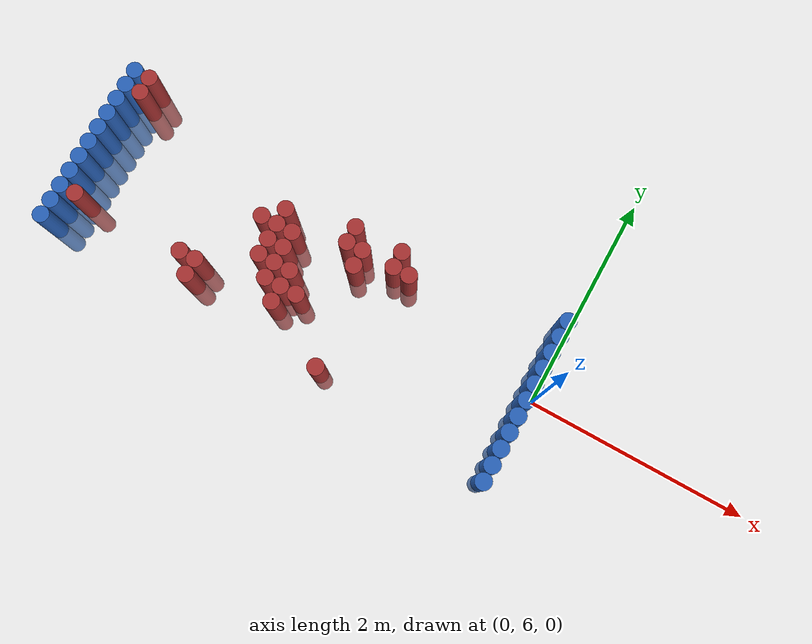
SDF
<sdf version="1.6">
 <world name="default">
  <model name="ground_plane">
   <static>1</static>
   <link name="link">
    <collision name="collision">
     <geometry><plane><normal>0 0 1</normal><size>100 100</size></plane></geometry>
     <surface><friction><ode><mu>100</mu><mu2>50</mu2></ode></friction></surface>
    </collision>
    <visual name="visual">
     <cast_shadows>0</cast_shadows>
     <geometry><plane><normal>0 0 1</normal><size>100 100</size></plane></geometry>
     <material>
      <script><uri>file://media/materials/scripts/gazebo.material</uri><name>Gazebo/Grey</name></script>
     </material>
    </visual>
   </link>
  </model>
  <model name="unit_cylinder_97">
   <static>1</static>
   <pose>-4.425000 5.325000 0.000000 0.000000 0.000000 0.000000</pose>
   <link name="link">
    <inertial>
     <mass>1</mass>
     <inertia><ixx>0.145833</ixx><ixy>0</ixy><ixz>0</ixz><iyy>0.145833</iyy><iyz>0</iyz><izz>0.125</izz></inertia>
    </inertial>
    <collision name="collision">
     <geometry><cylinder><radius>0.075000</radius><length>1</length></cylinder></geometry>
    </collision>
    <visual name="visual">
     <geometry><cylinder><radius>0.075000</radius><length>1</length></cylinder></geometry>
     <material>
      <ambient>0.152000 0.379000 0.720000 1</ambient>
      <diffuse>0.152000 0.379000 0.720000 1</diffuse>
     </material>
     <material>
      <script><name>Gazebo/Grey</name><uri>file://media/materials/scripts/gazebo.material</uri></script>
     </material>
    </visual>
   </link>
  </model>
  <model name="unit_cylinder_98">
   <static>1</static>
   <pose>-4.425000 5.475000 0.000000 0.000000 0.000000 0.000000</pose>
   <link name="link">
    <inertial>
     <mass>1</mass>
     <inertia><ixx>0.145833</ixx><ixy>0</ixy><ixz>0</ixz><iyy>0.145833</iyy><iyz>0</iyz><izz>0.125</izz></inertia>
    </inertial>
    <collision name="collision">
     <geometry><cylinder><radius>0.075000</radius><length>1</length></cylinder></geometry>
    </collision>
    <visual name="visual">
     <geometry><cylinder><radius>0.075000</radius><length>1</length></cylinder></geometry>
     <material>
      <ambient>0.152000 0.379000 0.720000 1</ambient>
      <diffuse>0.152000 0.379000 0.720000 1</diffuse>
     </material>
     <material>
      <script><name>Gazebo/Grey</name><uri>file://media/materials/scripts/gazebo.material</uri></script>
     </material>
    </visual>
   </link>
  </model>
  <model name="unit_cylinder_99">
   <static>1</static>
   <pose>-4.425000 5.625000 0.000000 0.000000 0.000000 0.000000</pose>
   <link name="link">
    <inertial>
     <mass>1</mass>
     <inertia><ixx>0.145833</ixx><ixy>0</ixy><ixz>0</ixz><iyy>0.145833</iyy><iyz>0</iyz><izz>0.125</izz></inertia>
    </inertial>
    <collision name="collision">
     <geometry><cylinder><radius>0.075000</radius><length>1</length></cylinder></geometry>
    </collision>
    <visual name="visual">
     <geometry><cylinder><radius>0.075000</radius><length>1</length></cylinder></geometry>
     <material>
      <ambient>0.152000 0.379000 0.720000 1</ambient>
      <diffuse>0.152000 0.379000 0.720000 1</diffuse>
     </material>
     <material>
      <script><name>Gazebo/Grey</name><uri>file://media/materials/scripts/gazebo.material</uri></script>
     </material>
    </visual>
   </link>
  </model>
  <model name="unit_cylinder_100">
   <static>1</static>
   <pose>-4.425000 5.775000 0.000000 0.000000 0.000000 0.000000</pose>
   <link name="link">
    <inertial>
     <mass>1</mass>
     <inertia><ixx>0.145833</ixx><ixy>0</ixy><ixz>0</ixz><iyy>0.145833</iyy><iyz>0</iyz><izz>0.125</izz></inertia>
    </inertial>
    <collision name="collision">
     <geometry><cylinder><radius>0.075000</radius><length>1</length></cylinder></geometry>
    </collision>
    <visual name="visual">
     <geometry><cylinder><radius>0.075000</radius><length>1</length></cylinder></geometry>
     <material>
      <ambient>0.152000 0.379000 0.720000 1</ambient>
      <diffuse>0.152000 0.379000 0.720000 1</diffuse>
     </material>
     <material>
      <script><name>Gazebo/Grey</name><uri>file://media/materials/scripts/gazebo.material</uri></script>
     </material>
    </visual>
   </link>
  </model>
  <model name="unit_cylinder_101">
   <static>1</static>
   <pose>-4.425000 5.925000 0.000000 0.000000 0.000000 0.000000</pose>
   <link name="link">
    <inertial>
     <mass>1</mass>
     <inertia><ixx>0.145833</ixx><ixy>0</ixy><ixz>0</ixz><iyy>0.145833</iyy><iyz>0</iyz><izz>0.125</izz></inertia>
    </inertial>
    <collision name="collision">
     <geometry><cylinder><radius>0.075000</radius><length>1</length></cylinder></geometry>
    </collision>
    <visual name="visual">
     <geometry><cylinder><radius>0.075000</radius><length>1</length></cylinder></geometry>
     <material>
      <ambient>0.152000 0.379000 0.720000 1</ambient>
      <diffuse>0.152000 0.379000 0.720000 1</diffuse>
     </material>
     <material>
      <script><name>Gazebo/Grey</name><uri>file://media/materials/scripts/gazebo.material</uri></script>
     </material>
    </visual>
   </link>
  </model>
  <model name="unit_cylinder_102">
   <static>1</static>
   <pose>-4.425000 6.075000 0.000000 0.000000 0.000000 0.000000</pose>
   <link name="link">
    <inertial>
     <mass>1</mass>
     <inertia><ixx>0.145833</ixx><ixy>0</ixy><ixz>0</ixz><iyy>0.145833</iyy><iyz>0</iyz><izz>0.125</izz></inertia>
    </inertial>
    <collision name="collision">
     <geometry><cylinder><radius>0.075000</radius><length>1</length></cylinder></geometry>
    </collision>
    <visual name="visual">
     <geometry><cylinder><radius>0.075000</radius><length>1</length></cylinder></geometry>
     <material>
      <ambient>0.152000 0.379000 0.720000 1</ambient>
      <diffuse>0.152000 0.379000 0.720000 1</diffuse>
     </material>
     <material>
      <script><name>Gazebo/Grey</name><uri>file://media/materials/scripts/gazebo.material</uri></script>
     </material>
    </visual>
   </link>
  </model>
  <model name="unit_cylinder_103">
   <static>1</static>
   <pose>-4.425000 6.225000 0.000000 0.000000 0.000000 0.000000</pose>
   <link name="link">
    <inertial>
     <mass>1</mass>
     <inertia><ixx>0.145833</ixx><ixy>0</ixy><ixz>0</ixz><iyy>0.145833</iyy><iyz>0</iyz><izz>0.125</izz></inertia>
    </inertial>
    <collision name="collision">
     <geometry><cylinder><radius>0.075000</radius><length>1</length></cylinder></geometry>
    </collision>
    <visual name="visual">
     <geometry><cylinder><radius>0.075000</radius><length>1</length></cylinder></geometry>
     <material>
      <ambient>0.152000 0.379000 0.720000 1</ambient>
      <diffuse>0.152000 0.379000 0.720000 1</diffuse>
     </material>
     <material>
      <script><name>Gazebo/Grey</name><uri>file://media/materials/scripts/gazebo.material</uri></script>
     </material>
    </visual>
   </link>
  </model>
  <model name="unit_cylinder_104">
   <static>1</static>
   <pose>-4.425000 6.375000 0.000000 0.000000 0.000000 0.000000</pose>
   <link name="link">
    <inertial>
     <mass>1</mass>
     <inertia><ixx>0.145833</ixx><ixy>0</ixy><ixz>0</ixz><iyy>0.145833</iyy><iyz>0</iyz><izz>0.125</izz></inertia>
    </inertial>
    <collision name="collision">
     <geometry><cylinder><radius>0.075000</radius><length>1</length></cylinder></geometry>
    </collision>
    <visual name="visual">
     <geometry><cylinder><radius>0.075000</radius><length>1</length></cylinder></geometry>
     <material>
      <ambient>0.152000 0.379000 0.720000 1</ambient>
      <diffuse>0.152000 0.379000 0.720000 1</diffuse>
     </material>
     <material>
      <script><name>Gazebo/Grey</name><uri>file://media/materials/scripts/gazebo.material</uri></script>
     </material>
    </visual>
   </link>
  </model>
  <model name="unit_cylinder_105">
   <static>1</static>
   <pose>-4.425000 6.525000 0.000000 0.000000 0.000000 0.000000</pose>
   <link name="link">
    <inertial>
     <mass>1</mass>
     <inertia><ixx>0.145833</ixx><ixy>0</ixy><ixz>0</ixz><iyy>0.145833</iyy><iyz>0</iyz><izz>0.125</izz></inertia>
    </inertial>
    <collision name="collision">
     <geometry><cylinder><radius>0.075000</radius><length>1</length></cylinder></geometry>
    </collision>
    <visual name="visual">
     <geometry><cylinder><radius>0.075000</radius><length>1</length></cylinder></geometry>
     <material>
      <ambient>0.152000 0.379000 0.720000 1</ambient>
      <diffuse>0.152000 0.379000 0.720000 1</diffuse>
     </material>
     <material>
      <script><name>Gazebo/Grey</name><uri>file://media/materials/scripts/gazebo.material</uri></script>
     </material>
    </visual>
   </link>
  </model>
  <model name="unit_cylinder_106">
   <static>1</static>
   <pose>-4.425000 6.675000 0.000000 0.000000 0.000000 0.000000</pose>
   <link name="link">
    <inertial>
     <mass>1</mass>
     <inertia><ixx>0.145833</ixx><ixy>0</ixy><ixz>0</ixz><iyy>0.145833</iyy><iyz>0</iyz><izz>0.125</izz></inertia>
    </inertial>
    <collision name="collision">
     <geometry><cylinder><radius>0.075000</radius><length>1</length></cylinder></geometry>
    </collision>
    <visual name="visual">
     <geometry><cylinder><radius>0.075000</radius><length>1</length></cylinder></geometry>
     <material>
      <ambient>0.152000 0.379000 0.720000 1</ambient>
      <diffuse>0.152000 0.379000 0.720000 1</diffuse>
     </material>
     <material>
      <script><name>Gazebo/Grey</name><uri>file://media/materials/scripts/gazebo.material</uri></script>
     </material>
    </visual>
   </link>
  </model>
  <model name="unit_cylinder_107">
   <static>1</static>
   <pose>-4.425000 6.825000 0.000000 0.000000 0.000000 0.000000</pose>
   <link name="link">
    <inertial>
     <mass>1</mass>
     <inertia><ixx>0.145833</ixx><ixy>0</ixy><ixz>0</ixz><iyy>0.145833</iyy><iyz>0</iyz><izz>0.125</izz></inertia>
    </inertial>
    <collision name="collision">
     <geometry><cylinder><radius>0.075000</radius><length>1</length></cylinder></geometry>
    </collision>
    <visual name="visual">
     <geometry><cylinder><radius>0.075000</radius><length>1</length></cylinder></geometry>
     <material>
      <ambient>0.152000 0.379000 0.720000 1</ambient>
      <diffuse>0.152000 0.379000 0.720000 1</diffuse>
     </material>
     <material>
      <script><name>Gazebo/Grey</name><uri>file://media/materials/scripts/gazebo.material</uri></script>
     </material>
    </visual>
   </link>
  </model>
  <model name="unit_cylinder_126">
   <static>1</static>
   <pose>-4.275000 5.625000 0.000000 0.000000 0.000000 0.000000</pose>
   <link name="link">
    <inertial>
     <mass>1</mass>
     <inertia><ixx>0.145833</ixx><ixy>0</ixy><ixz>0</ixz><iyy>0.145833</iyy><iyz>0</iyz><izz>0.125</izz></inertia>
    </inertial>
    <collision name="collision">
     <geometry><cylinder><radius>0.075000</radius><length>1</length></cylinder></geometry>
    </collision>
    <visual name="visual">
     <geometry><cylinder><radius>0.075000</radius><length>1</length></cylinder></geometry>
     <material>
      <ambient>0.648000 0.192000 0.192000 1</ambient>
      <diffuse>0.648000 0.192000 0.192000 1</diffuse>
     </material>
     <material>
      <script><name>Gazebo/Grey</name><uri>file://media/materials/scripts/gazebo.material</uri></script>
     </material>
    </visual>
   </link>
  </model>
  <model name="unit_cylinder_127">
   <static>1</static>
   <pose>-4.275000 6.675000 0.000000 0.000000 0.000000 0.000000</pose>
   <link name="link">
    <inertial>
     <mass>1</mass>
     <inertia><ixx>0.145833</ixx><ixy>0</ixy><ixz>0</ixz><iyy>0.145833</iyy><iyz>0</iyz><izz>0.125</izz></inertia>
    </inertial>
    <collision name="collision">
     <geometry><cylinder><radius>0.075000</radius><length>1</length></cylinder></geometry>
    </collision>
    <visual name="visual">
     <geometry><cylinder><radius>0.075000</radius><length>1</length></cylinder></geometry>
     <material>
      <ambient>0.648000 0.192000 0.192000 1</ambient>
      <diffuse>0.648000 0.192000 0.192000 1</diffuse>
     </material>
     <material>
      <script><name>Gazebo/Grey</name><uri>file://media/materials/scripts/gazebo.material</uri></script>
     </material>
    </visual>
   </link>
  </model>
  <model name="unit_cylinder_128">
   <static>1</static>
   <pose>-4.275000 6.825000 0.000000 0.000000 0.000000 0.000000</pose>
   <link name="link">
    <inertial>
     <mass>1</mass>
     <inertia><ixx>0.145833</ixx><ixy>0</ixy><ixz>0</ixz><iyy>0.145833</iyy><iyz>0</iyz><izz>0.125</izz></inertia>
    </inertial>
    <collision name="collision">
     <geometry><cylinder><radius>0.075000</radius><length>1</length></cylinder></geometry>
    </collision>
    <visual name="visual">
     <geometry><cylinder><radius>0.075000</radius><length>1</length></cylinder></geometry>
     <material>
      <ambient>0.648000 0.192000 0.192000 1</ambient>
      <diffuse>0.648000 0.192000 0.192000 1</diffuse>
     </material>
     <material>
      <script><name>Gazebo/Grey</name><uri>file://media/materials/scripts/gazebo.material</uri></script>
     </material>
    </visual>
   </link>
  </model>
  <model name="unit_cylinder_167">
   <static>1</static>
   <pose>-3.225000 5.625000 0.000000 0.000000 0.000000 0.000000</pose>
   <link name="link">
    <inertial>
     <mass>1</mass>
     <inertia><ixx>0.145833</ixx><ixy>0</ixy><ixz>0</ixz><iyy>0.145833</iyy><iyz>0</iyz><izz>0.125</izz></inertia>
    </inertial>
    <collision name="collision">
     <geometry><cylinder><radius>0.075000</radius><length>1</length></cylinder></geometry>
    </collision>
    <visual name="visual">
     <geometry><cylinder><radius>0.075000</radius><length>1</length></cylinder></geometry>
     <material>
      <ambient>0.648000 0.192000 0.192000 1</ambient>
      <diffuse>0.648000 0.192000 0.192000 1</diffuse>
     </material>
     <material>
      <script><name>Gazebo/Grey</name><uri>file://media/materials/scripts/gazebo.material</uri></script>
     </material>
    </visual>
   </link>
  </model>
  <model name="unit_cylinder_168">
   <static>1</static>
   <pose>-3.075000 5.475000 0.000000 0.000000 0.000000 0.000000</pose>
   <link name="link">
    <inertial>
     <mass>1</mass>
     <inertia><ixx>0.145833</ixx><ixy>0</ixy><ixz>0</ixz><iyy>0.145833</iyy><iyz>0</iyz><izz>0.125</izz></inertia>
    </inertial>
    <collision name="collision">
     <geometry><cylinder><radius>0.075000</radius><length>1</length></cylinder></geometry>
    </collision>
    <visual name="visual">
     <geometry><cylinder><radius>0.075000</radius><length>1</length></cylinder></geometry>
     <material>
      <ambient>0.648000 0.192000 0.192000 1</ambient>
      <diffuse>0.648000 0.192000 0.192000 1</diffuse>
     </material>
     <material>
      <script><name>Gazebo/Grey</name><uri>file://media/materials/scripts/gazebo.material</uri></script>
     </material>
    </visual>
   </link>
  </model>
  <model name="unit_cylinder_169">
   <static>1</static>
   <pose>-3.075000 5.625000 0.000000 0.000000 0.000000 0.000000</pose>
   <link name="link">
    <inertial>
     <mass>1</mass>
     <inertia><ixx>0.145833</ixx><ixy>0</ixy><ixz>0</ixz><iyy>0.145833</iyy><iyz>0</iyz><izz>0.125</izz></inertia>
    </inertial>
    <collision name="collision">
     <geometry><cylinder><radius>0.075000</radius><length>1</length></cylinder></geometry>
    </collision>
    <visual name="visual">
     <geometry><cylinder><radius>0.075000</radius><length>1</length></cylinder></geometry>
     <material>
      <ambient>0.648000 0.192000 0.192000 1</ambient>
      <diffuse>0.648000 0.192000 0.192000 1</diffuse>
     </material>
     <material>
      <script><name>Gazebo/Grey</name><uri>file://media/materials/scripts/gazebo.material</uri></script>
     </material>
    </visual>
   </link>
  </model>
  <model name="unit_cylinder_171">
   <static>1</static>
   <pose>-2.775000 6.225000 0.000000 0.000000 0.000000 0.000000</pose>
   <link name="link">
    <inertial>
     <mass>1</mass>
     <inertia><ixx>0.145833</ixx><ixy>0</ixy><ixz>0</ixz><iyy>0.145833</iyy><iyz>0</iyz><izz>0.125</izz></inertia>
    </inertial>
    <collision name="collision">
     <geometry><cylinder><radius>0.075000</radius><length>1</length></cylinder></geometry>
    </collision>
    <visual name="visual">
     <geometry><cylinder><radius>0.075000</radius><length>1</length></cylinder></geometry>
     <material>
      <ambient>0.648000 0.192000 0.192000 1</ambient>
      <diffuse>0.648000 0.192000 0.192000 1</diffuse>
     </material>
     <material>
      <script><name>Gazebo/Grey</name><uri>file://media/materials/scripts/gazebo.material</uri></script>
     </material>
    </visual>
   </link>
  </model>
  <model name="unit_cylinder_174">
   <static>1</static>
   <pose>-2.625000 5.925000 0.000000 0.000000 0.000000 0.000000</pose>
   <link name="link">
    <inertial>
     <mass>1</mass>
     <inertia><ixx>0.145833</ixx><ixy>0</ixy><ixz>0</ixz><iyy>0.145833</iyy><iyz>0</iyz><izz>0.125</izz></inertia>
    </inertial>
    <collision name="collision">
     <geometry><cylinder><radius>0.075000</radius><length>1</length></cylinder></geometry>
    </collision>
    <visual name="visual">
     <geometry><cylinder><radius>0.075000</radius><length>1</length></cylinder></geometry>
     <material>
      <ambient>0.648000 0.192000 0.192000 1</ambient>
      <diffuse>0.648000 0.192000 0.192000 1</diffuse>
     </material>
     <material>
      <script><name>Gazebo/Grey</name><uri>file://media/materials/scripts/gazebo.material</uri></script>
     </material>
    </visual>
   </link>
  </model>
  <model name="unit_cylinder_175">
   <static>1</static>
   <pose>-2.625000 6.075000 0.000000 0.000000 0.000000 0.000000</pose>
   <link name="link">
    <inertial>
     <mass>1</mass>
     <inertia><ixx>0.145833</ixx><ixy>0</ixy><ixz>0</ixz><iyy>0.145833</iyy><iyz>0</iyz><izz>0.125</izz></inertia>
    </inertial>
    <collision name="collision">
     <geometry><cylinder><radius>0.075000</radius><length>1</length></cylinder></geometry>
    </collision>
    <visual name="visual">
     <geometry><cylinder><radius>0.075000</radius><length>1</length></cylinder></geometry>
     <material>
      <ambient>0.648000 0.192000 0.192000 1</ambient>
      <diffuse>0.648000 0.192000 0.192000 1</diffuse>
     </material>
     <material>
      <script><name>Gazebo/Grey</name><uri>file://media/materials/scripts/gazebo.material</uri></script>
     </material>
    </visual>
   </link>
  </model>
  <model name="unit_cylinder_176">
   <static>1</static>
   <pose>-2.625000 6.225000 0.000000 0.000000 0.000000 0.000000</pose>
   <link name="link">
    <inertial>
     <mass>1</mass>
     <inertia><ixx>0.145833</ixx><ixy>0</ixy><ixz>0</ixz><iyy>0.145833</iyy><iyz>0</iyz><izz>0.125</izz></inertia>
    </inertial>
    <collision name="collision">
     <geometry><cylinder><radius>0.075000</radius><length>1</length></cylinder></geometry>
    </collision>
    <visual name="visual">
     <geometry><cylinder><radius>0.075000</radius><length>1</length></cylinder></geometry>
     <material>
      <ambient>0.648000 0.192000 0.192000 1</ambient>
      <diffuse>0.648000 0.192000 0.192000 1</diffuse>
     </material>
     <material>
      <script><name>Gazebo/Grey</name><uri>file://media/materials/scripts/gazebo.material</uri></script>
     </material>
    </visual>
   </link>
  </model>
  <model name="unit_cylinder_177">
   <static>1</static>
   <pose>-2.625000 6.375000 0.000000 0.000000 0.000000 0.000000</pose>
   <link name="link">
    <inertial>
     <mass>1</mass>
     <inertia><ixx>0.145833</ixx><ixy>0</ixy><ixz>0</ixz><iyy>0.145833</iyy><iyz>0</iyz><izz>0.125</izz></inertia>
    </inertial>
    <collision name="collision">
     <geometry><cylinder><radius>0.075000</radius><length>1</length></cylinder></geometry>
    </collision>
    <visual name="visual">
     <geometry><cylinder><radius>0.075000</radius><length>1</length></cylinder></geometry>
     <material>
      <ambient>0.648000 0.192000 0.192000 1</ambient>
      <diffuse>0.648000 0.192000 0.192000 1</diffuse>
     </material>
     <material>
      <script><name>Gazebo/Grey</name><uri>file://media/materials/scripts/gazebo.material</uri></script>
     </material>
    </visual>
   </link>
  </model>
  <model name="unit_cylinder_179">
   <static>1</static>
   <pose>-2.475000 5.775000 0.000000 0.000000 0.000000 0.000000</pose>
   <link name="link">
    <inertial>
     <mass>1</mass>
     <inertia><ixx>0.145833</ixx><ixy>0</ixy><ixz>0</ixz><iyy>0.145833</iyy><iyz>0</iyz><izz>0.125</izz></inertia>
    </inertial>
    <collision name="collision">
     <geometry><cylinder><radius>0.075000</radius><length>1</length></cylinder></geometry>
    </collision>
    <visual name="visual">
     <geometry><cylinder><radius>0.075000</radius><length>1</length></cylinder></geometry>
     <material>
      <ambient>0.648000 0.192000 0.192000 1</ambient>
      <diffuse>0.648000 0.192000 0.192000 1</diffuse>
     </material>
     <material>
      <script><name>Gazebo/Grey</name><uri>file://media/materials/scripts/gazebo.material</uri></script>
     </material>
    </visual>
   </link>
  </model>
  <model name="unit_cylinder_180">
   <static>1</static>
   <pose>-2.475000 5.925000 0.000000 0.000000 0.000000 0.000000</pose>
   <link name="link">
    <inertial>
     <mass>1</mass>
     <inertia><ixx>0.145833</ixx><ixy>0</ixy><ixz>0</ixz><iyy>0.145833</iyy><iyz>0</iyz><izz>0.125</izz></inertia>
    </inertial>
    <collision name="collision">
     <geometry><cylinder><radius>0.075000</radius><length>1</length></cylinder></geometry>
    </collision>
    <visual name="visual">
     <geometry><cylinder><radius>0.075000</radius><length>1</length></cylinder></geometry>
     <material>
      <ambient>0.648000 0.192000 0.192000 1</ambient>
      <diffuse>0.648000 0.192000 0.192000 1</diffuse>
     </material>
     <material>
      <script><name>Gazebo/Grey</name><uri>file://media/materials/scripts/gazebo.material</uri></script>
     </material>
    </visual>
   </link>
  </model>
  <model name="unit_cylinder_181">
   <static>1</static>
   <pose>-2.475000 6.075000 0.000000 0.000000 0.000000 0.000000</pose>
   <link name="link">
    <inertial>
     <mass>1</mass>
     <inertia><ixx>0.145833</ixx><ixy>0</ixy><ixz>0</ixz><iyy>0.145833</iyy><iyz>0</iyz><izz>0.125</izz></inertia>
    </inertial>
    <collision name="collision">
     <geometry><cylinder><radius>0.075000</radius><length>1</length></cylinder></geometry>
    </collision>
    <visual name="visual">
     <geometry><cylinder><radius>0.075000</radius><length>1</length></cylinder></geometry>
     <material>
      <ambient>0.648000 0.192000 0.192000 1</ambient>
      <diffuse>0.648000 0.192000 0.192000 1</diffuse>
     </material>
     <material>
      <script><name>Gazebo/Grey</name><uri>file://media/materials/scripts/gazebo.material</uri></script>
     </material>
    </visual>
   </link>
  </model>
  <model name="unit_cylinder_182">
   <static>1</static>
   <pose>-2.475000 6.225000 0.000000 0.000000 0.000000 0.000000</pose>
   <link name="link">
    <inertial>
     <mass>1</mass>
     <inertia><ixx>0.145833</ixx><ixy>0</ixy><ixz>0</ixz><iyy>0.145833</iyy><iyz>0</iyz><izz>0.125</izz></inertia>
    </inertial>
    <collision name="collision">
     <geometry><cylinder><radius>0.075000</radius><length>1</length></cylinder></geometry>
    </collision>
    <visual name="visual">
     <geometry><cylinder><radius>0.075000</radius><length>1</length></cylinder></geometry>
     <material>
      <ambient>0.648000 0.192000 0.192000 1</ambient>
      <diffuse>0.648000 0.192000 0.192000 1</diffuse>
     </material>
     <material>
      <script><name>Gazebo/Grey</name><uri>file://media/materials/scripts/gazebo.material</uri></script>
     </material>
    </visual>
   </link>
  </model>
  <model name="unit_cylinder_183">
   <static>1</static>
   <pose>-2.325000 5.625000 0.000000 0.000000 0.000000 0.000000</pose>
   <link name="link">
    <inertial>
     <mass>1</mass>
     <inertia><ixx>0.145833</ixx><ixy>0</ixy><ixz>0</ixz><iyy>0.145833</iyy><iyz>0</iyz><izz>0.125</izz></inertia>
    </inertial>
    <collision name="collision">
     <geometry><cylinder><radius>0.075000</radius><length>1</length></cylinder></geometry>
    </collision>
    <visual name="visual">
     <geometry><cylinder><radius>0.075000</radius><length>1</length></cylinder></geometry>
     <material>
      <ambient>0.648000 0.192000 0.192000 1</ambient>
      <diffuse>0.648000 0.192000 0.192000 1</diffuse>
     </material>
     <material>
      <script><name>Gazebo/Grey</name><uri>file://media/materials/scripts/gazebo.material</uri></script>
     </material>
    </visual>
   </link>
  </model>
  <model name="unit_cylinder_184">
   <static>1</static>
   <pose>-2.325000 5.775000 0.000000 0.000000 0.000000 0.000000</pose>
   <link name="link">
    <inertial>
     <mass>1</mass>
     <inertia><ixx>0.145833</ixx><ixy>0</ixy><ixz>0</ixz><iyy>0.145833</iyy><iyz>0</iyz><izz>0.125</izz></inertia>
    </inertial>
    <collision name="collision">
     <geometry><cylinder><radius>0.075000</radius><length>1</length></cylinder></geometry>
    </collision>
    <visual name="visual">
     <geometry><cylinder><radius>0.075000</radius><length>1</length></cylinder></geometry>
     <material>
      <ambient>0.648000 0.192000 0.192000 1</ambient>
      <diffuse>0.648000 0.192000 0.192000 1</diffuse>
     </material>
     <material>
      <script><name>Gazebo/Grey</name><uri>file://media/materials/scripts/gazebo.material</uri></script>
     </material>
    </visual>
   </link>
  </model>
  <model name="unit_cylinder_185">
   <static>1</static>
   <pose>-2.325000 5.925000 0.000000 0.000000 0.000000 0.000000</pose>
   <link name="link">
    <inertial>
     <mass>1</mass>
     <inertia><ixx>0.145833</ixx><ixy>0</ixy><ixz>0</ixz><iyy>0.145833</iyy><iyz>0</iyz><izz>0.125</izz></inertia>
    </inertial>
    <collision name="collision">
     <geometry><cylinder><radius>0.075000</radius><length>1</length></cylinder></geometry>
    </collision>
    <visual name="visual">
     <geometry><cylinder><radius>0.075000</radius><length>1</length></cylinder></geometry>
     <material>
      <ambient>0.648000 0.192000 0.192000 1</ambient>
      <diffuse>0.648000 0.192000 0.192000 1</diffuse>
     </material>
     <material>
      <script><name>Gazebo/Grey</name><uri>file://media/materials/scripts/gazebo.material</uri></script>
     </material>
    </visual>
   </link>
  </model>
  <model name="unit_cylinder_186">
   <static>1</static>
   <pose>-2.175000 5.775000 0.000000 0.000000 0.000000 0.000000</pose>
   <link name="link">
    <inertial>
     <mass>1</mass>
     <inertia><ixx>0.145833</ixx><ixy>0</ixy><ixz>0</ixz><iyy>0.145833</iyy><iyz>0</iyz><izz>0.125</izz></inertia>
    </inertial>
    <collision name="collision">
     <geometry><cylinder><radius>0.075000</radius><length>1</length></cylinder></geometry>
    </collision>
    <visual name="visual">
     <geometry><cylinder><radius>0.075000</radius><length>1</length></cylinder></geometry>
     <material>
      <ambient>0.648000 0.192000 0.192000 1</ambient>
      <diffuse>0.648000 0.192000 0.192000 1</diffuse>
     </material>
     <material>
      <script><name>Gazebo/Grey</name><uri>file://media/materials/scripts/gazebo.material</uri></script>
     </material>
    </visual>
   </link>
  </model>
  <model name="unit_cylinder_188">
   <static>1</static>
   <pose>-2.025000 6.375000 0.000000 0.000000 0.000000 0.000000</pose>
   <link name="link">
    <inertial>
     <mass>1</mass>
     <inertia><ixx>0.145833</ixx><ixy>0</ixy><ixz>0</ixz><iyy>0.145833</iyy><iyz>0</iyz><izz>0.125</izz></inertia>
    </inertial>
    <collision name="collision">
     <geometry><cylinder><radius>0.075000</radius><length>1</length></cylinder></geometry>
    </collision>
    <visual name="visual">
     <geometry><cylinder><radius>0.075000</radius><length>1</length></cylinder></geometry>
     <material>
      <ambient>0.648000 0.192000 0.192000 1</ambient>
      <diffuse>0.648000 0.192000 0.192000 1</diffuse>
     </material>
     <material>
      <script><name>Gazebo/Grey</name><uri>file://media/materials/scripts/gazebo.material</uri></script>
     </material>
    </visual>
   </link>
  </model>
  <model name="unit_cylinder_189">
   <static>1</static>
   <pose>-2.025000 6.525000 0.000000 0.000000 0.000000 0.000000</pose>
   <link name="link">
    <inertial>
     <mass>1</mass>
     <inertia><ixx>0.145833</ixx><ixy>0</ixy><ixz>0</ixz><iyy>0.145833</iyy><iyz>0</iyz><izz>0.125</izz></inertia>
    </inertial>
    <collision name="collision">
     <geometry><cylinder><radius>0.075000</radius><length>1</length></cylinder></geometry>
    </collision>
    <visual name="visual">
     <geometry><cylinder><radius>0.075000</radius><length>1</length></cylinder></geometry>
     <material>
      <ambient>0.648000 0.192000 0.192000 1</ambient>
      <diffuse>0.648000 0.192000 0.192000 1</diffuse>
     </material>
     <material>
      <script><name>Gazebo/Grey</name><uri>file://media/materials/scripts/gazebo.material</uri></script>
     </material>
    </visual>
   </link>
  </model>
  <model name="unit_cylinder_192">
   <static>1</static>
   <pose>-1.875000 6.225000 0.000000 0.000000 0.000000 0.000000</pose>
   <link name="link">
    <inertial>
     <mass>1</mass>
     <inertia><ixx>0.145833</ixx><ixy>0</ixy><ixz>0</ixz><iyy>0.145833</iyy><iyz>0</iyz><izz>0.125</izz></inertia>
    </inertial>
    <collision name="collision">
     <geometry><cylinder><radius>0.075000</radius><length>1</length></cylinder></geometry>
    </collision>
    <visual name="visual">
     <geometry><cylinder><radius>0.075000</radius><length>1</length></cylinder></geometry>
     <material>
      <ambient>0.648000 0.192000 0.192000 1</ambient>
      <diffuse>0.648000 0.192000 0.192000 1</diffuse>
     </material>
     <material>
      <script><name>Gazebo/Grey</name><uri>file://media/materials/scripts/gazebo.material</uri></script>
     </material>
    </visual>
   </link>
  </model>
  <model name="unit_cylinder_193">
   <static>1</static>
   <pose>-1.875000 6.375000 0.000000 0.000000 0.000000 0.000000</pose>
   <link name="link">
    <inertial>
     <mass>1</mass>
     <inertia><ixx>0.145833</ixx><ixy>0</ixy><ixz>0</ixz><iyy>0.145833</iyy><iyz>0</iyz><izz>0.125</izz></inertia>
    </inertial>
    <collision name="collision">
     <geometry><cylinder><radius>0.075000</radius><length>1</length></cylinder></geometry>
    </collision>
    <visual name="visual">
     <geometry><cylinder><radius>0.075000</radius><length>1</length></cylinder></geometry>
     <material>
      <ambient>0.648000 0.192000 0.192000 1</ambient>
      <diffuse>0.648000 0.192000 0.192000 1</diffuse>
     </material>
     <material>
      <script><name>Gazebo/Grey</name><uri>file://media/materials/scripts/gazebo.material</uri></script>
     </material>
    </visual>
   </link>
  </model>
  <model name="unit_cylinder_196">
   <static>1</static>
   <pose>-1.725000 5.325000 0.000000 0.000000 0.000000 0.000000</pose>
   <link name="link">
    <inertial>
     <mass>1</mass>
     <inertia><ixx>0.145833</ixx><ixy>0</ixy><ixz>0</ixz><iyy>0.145833</iyy><iyz>0</iyz><izz>0.125</izz></inertia>
    </inertial>
    <collision name="collision">
     <geometry><cylinder><radius>0.075000</radius><length>1</length></cylinder></geometry>
    </collision>
    <visual name="visual">
     <geometry><cylinder><radius>0.075000</radius><length>1</length></cylinder></geometry>
     <material>
      <ambient>0.648000 0.192000 0.192000 1</ambient>
      <diffuse>0.648000 0.192000 0.192000 1</diffuse>
     </material>
     <material>
      <script><name>Gazebo/Grey</name><uri>file://media/materials/scripts/gazebo.material</uri></script>
     </material>
    </visual>
   </link>
  </model>
  <model name="unit_cylinder_198">
   <static>1</static>
   <pose>-1.575000 6.375000 0.000000 0.000000 0.000000 0.000000</pose>
   <link name="link">
    <inertial>
     <mass>1</mass>
     <inertia><ixx>0.145833</ixx><ixy>0</ixy><ixz>0</ixz><iyy>0.145833</iyy><iyz>0</iyz><izz>0.125</izz></inertia>
    </inertial>
    <collision name="collision">
     <geometry><cylinder><radius>0.075000</radius><length>1</length></cylinder></geometry>
    </collision>
    <visual name="visual">
     <geometry><cylinder><radius>0.075000</radius><length>1</length></cylinder></geometry>
     <material>
      <ambient>0.648000 0.192000 0.192000 1</ambient>
      <diffuse>0.648000 0.192000 0.192000 1</diffuse>
     </material>
     <material>
      <script><name>Gazebo/Grey</name><uri>file://media/materials/scripts/gazebo.material</uri></script>
     </material>
    </visual>
   </link>
  </model>
  <model name="unit_cylinder_199">
   <static>1</static>
   <pose>-1.575000 6.525000 0.000000 0.000000 0.000000 0.000000</pose>
   <link name="link">
    <inertial>
     <mass>1</mass>
     <inertia><ixx>0.145833</ixx><ixy>0</ixy><ixz>0</ixz><iyy>0.145833</iyy><iyz>0</iyz><izz>0.125</izz></inertia>
    </inertial>
    <collision name="collision">
     <geometry><cylinder><radius>0.075000</radius><length>1</length></cylinder></geometry>
    </collision>
    <visual name="visual">
     <geometry><cylinder><radius>0.075000</radius><length>1</length></cylinder></geometry>
     <material>
      <ambient>0.648000 0.192000 0.192000 1</ambient>
      <diffuse>0.648000 0.192000 0.192000 1</diffuse>
     </material>
     <material>
      <script><name>Gazebo/Grey</name><uri>file://media/materials/scripts/gazebo.material</uri></script>
     </material>
    </visual>
   </link>
  </model>
  <model name="unit_cylinder_200">
   <static>1</static>
   <pose>-1.425000 6.375000 0.000000 0.000000 0.000000 0.000000</pose>
   <link name="link">
    <inertial>
     <mass>1</mass>
     <inertia><ixx>0.145833</ixx><ixy>0</ixy><ixz>0</ixz><iyy>0.145833</iyy><iyz>0</iyz><izz>0.125</izz></inertia>
    </inertial>
    <collision name="collision">
     <geometry><cylinder><radius>0.075000</radius><length>1</length></cylinder></geometry>
    </collision>
    <visual name="visual">
     <geometry><cylinder><radius>0.075000</radius><length>1</length></cylinder></geometry>
     <material>
      <ambient>0.648000 0.192000 0.192000 1</ambient>
      <diffuse>0.648000 0.192000 0.192000 1</diffuse>
     </material>
     <material>
      <script><name>Gazebo/Grey</name><uri>file://media/materials/scripts/gazebo.material</uri></script>
     </material>
    </visual>
   </link>
  </model>
  <model name="unit_cylinder_217">
   <static>1</static>
   <pose>-0.075000 5.175000 0.000000 0.000000 0.000000 0.000000</pose>
   <link name="link">
    <inertial>
     <mass>1</mass>
     <inertia><ixx>0.145833</ixx><ixy>0</ixy><ixz>0</ixz><iyy>0.145833</iyy><iyz>0</iyz><izz>0.125</izz></inertia>
    </inertial>
    <collision name="collision">
     <geometry><cylinder><radius>0.075000</radius><length>1</length></cylinder></geometry>
    </collision>
    <visual name="visual">
     <geometry><cylinder><radius>0.075000</radius><length>1</length></cylinder></geometry>
     <material>
      <ambient>0.152000 0.379000 0.720000 1</ambient>
      <diffuse>0.152000 0.379000 0.720000 1</diffuse>
     </material>
     <material>
      <script><name>Gazebo/Grey</name><uri>file://media/materials/scripts/gazebo.material</uri></script>
     </material>
    </visual>
   </link>
  </model>
  <model name="unit_cylinder_218">
   <static>1</static>
   <pose>-0.075000 5.325000 0.000000 0.000000 0.000000 0.000000</pose>
   <link name="link">
    <inertial>
     <mass>1</mass>
     <inertia><ixx>0.145833</ixx><ixy>0</ixy><ixz>0</ixz><iyy>0.145833</iyy><iyz>0</iyz><izz>0.125</izz></inertia>
    </inertial>
    <collision name="collision">
     <geometry><cylinder><radius>0.075000</radius><length>1</length></cylinder></geometry>
    </collision>
    <visual name="visual">
     <geometry><cylinder><radius>0.075000</radius><length>1</length></cylinder></geometry>
     <material>
      <ambient>0.152000 0.379000 0.720000 1</ambient>
      <diffuse>0.152000 0.379000 0.720000 1</diffuse>
     </material>
     <material>
      <script><name>Gazebo/Grey</name><uri>file://media/materials/scripts/gazebo.material</uri></script>
     </material>
    </visual>
   </link>
  </model>
  <model name="unit_cylinder_219">
   <static>1</static>
   <pose>-0.075000 5.475000 0.000000 0.000000 0.000000 0.000000</pose>
   <link name="link">
    <inertial>
     <mass>1</mass>
     <inertia><ixx>0.145833</ixx><ixy>0</ixy><ixz>0</ixz><iyy>0.145833</iyy><iyz>0</iyz><izz>0.125</izz></inertia>
    </inertial>
    <collision name="collision">
     <geometry><cylinder><radius>0.075000</radius><length>1</length></cylinder></geometry>
    </collision>
    <visual name="visual">
     <geometry><cylinder><radius>0.075000</radius><length>1</length></cylinder></geometry>
     <material>
      <ambient>0.152000 0.379000 0.720000 1</ambient>
      <diffuse>0.152000 0.379000 0.720000 1</diffuse>
     </material>
     <material>
      <script><name>Gazebo/Grey</name><uri>file://media/materials/scripts/gazebo.material</uri></script>
     </material>
    </visual>
   </link>
  </model>
  <model name="unit_cylinder_220">
   <static>1</static>
   <pose>-0.075000 5.625000 0.000000 0.000000 0.000000 0.000000</pose>
   <link name="link">
    <inertial>
     <mass>1</mass>
     <inertia><ixx>0.145833</ixx><ixy>0</ixy><ixz>0</ixz><iyy>0.145833</iyy><iyz>0</iyz><izz>0.125</izz></inertia>
    </inertial>
    <collision name="collision">
     <geometry><cylinder><radius>0.075000</radius><length>1</length></cylinder></geometry>
    </collision>
    <visual name="visual">
     <geometry><cylinder><radius>0.075000</radius><length>1</length></cylinder></geometry>
     <material>
      <ambient>0.152000 0.379000 0.720000 1</ambient>
      <diffuse>0.152000 0.379000 0.720000 1</diffuse>
     </material>
     <material>
      <script><name>Gazebo/Grey</name><uri>file://media/materials/scripts/gazebo.material</uri></script>
     </material>
    </visual>
   </link>
  </model>
  <model name="unit_cylinder_221">
   <static>1</static>
   <pose>-0.075000 5.775000 0.000000 0.000000 0.000000 0.000000</pose>
   <link name="link">
    <inertial>
     <mass>1</mass>
     <inertia><ixx>0.145833</ixx><ixy>0</ixy><ixz>0</ixz><iyy>0.145833</iyy><iyz>0</iyz><izz>0.125</izz></inertia>
    </inertial>
    <collision name="collision">
     <geometry><cylinder><radius>0.075000</radius><length>1</length></cylinder></geometry>
    </collision>
    <visual name="visual">
     <geometry><cylinder><radius>0.075000</radius><length>1</length></cylinder></geometry>
     <material>
      <ambient>0.152000 0.379000 0.720000 1</ambient>
      <diffuse>0.152000 0.379000 0.720000 1</diffuse>
     </material>
     <material>
      <script><name>Gazebo/Grey</name><uri>file://media/materials/scripts/gazebo.material</uri></script>
     </material>
    </visual>
   </link>
  </model>
  <model name="unit_cylinder_222">
   <static>1</static>
   <pose>-0.075000 5.925000 0.000000 0.000000 0.000000 0.000000</pose>
   <link name="link">
    <inertial>
     <mass>1</mass>
     <inertia><ixx>0.145833</ixx><ixy>0</ixy><ixz>0</ixz><iyy>0.145833</iyy><iyz>0</iyz><izz>0.125</izz></inertia>
    </inertial>
    <collision name="collision">
     <geometry><cylinder><radius>0.075000</radius><length>1</length></cylinder></geometry>
    </collision>
    <visual name="visual">
     <geometry><cylinder><radius>0.075000</radius><length>1</length></cylinder></geometry>
     <material>
      <ambient>0.152000 0.379000 0.720000 1</ambient>
      <diffuse>0.152000 0.379000 0.720000 1</diffuse>
     </material>
     <material>
      <script><name>Gazebo/Grey</name><uri>file://media/materials/scripts/gazebo.material</uri></script>
     </material>
    </visual>
   </link>
  </model>
  <model name="unit_cylinder_223">
   <static>1</static>
   <pose>-0.075000 6.075000 0.000000 0.000000 0.000000 0.000000</pose>
   <link name="link">
    <inertial>
     <mass>1</mass>
     <inertia><ixx>0.145833</ixx><ixy>0</ixy><ixz>0</ixz><iyy>0.145833</iyy><iyz>0</iyz><izz>0.125</izz></inertia>
    </inertial>
    <collision name="collision">
     <geometry><cylinder><radius>0.075000</radius><length>1</length></cylinder></geometry>
    </collision>
    <visual name="visual">
     <geometry><cylinder><radius>0.075000</radius><length>1</length></cylinder></geometry>
     <material>
      <ambient>0.152000 0.379000 0.720000 1</ambient>
      <diffuse>0.152000 0.379000 0.720000 1</diffuse>
     </material>
     <material>
      <script><name>Gazebo/Grey</name><uri>file://media/materials/scripts/gazebo.material</uri></script>
     </material>
    </visual>
   </link>
  </model>
  <model name="unit_cylinder_224">
   <static>1</static>
   <pose>-0.075000 6.225000 0.000000 0.000000 0.000000 0.000000</pose>
   <link name="link">
    <inertial>
     <mass>1</mass>
     <inertia><ixx>0.145833</ixx><ixy>0</ixy><ixz>0</ixz><iyy>0.145833</iyy><iyz>0</iyz><izz>0.125</izz></inertia>
    </inertial>
    <collision name="collision">
     <geometry><cylinder><radius>0.075000</radius><length>1</length></cylinder></geometry>
    </collision>
    <visual name="visual">
     <geometry><cylinder><radius>0.075000</radius><length>1</length></cylinder></geometry>
     <material>
      <ambient>0.152000 0.379000 0.720000 1</ambient>
      <diffuse>0.152000 0.379000 0.720000 1</diffuse>
     </material>
     <material>
      <script><name>Gazebo/Grey</name><uri>file://media/materials/scripts/gazebo.material</uri></script>
     </material>
    </visual>
   </link>
  </model>
  <model name="unit_cylinder_225">
   <static>1</static>
   <pose>-0.075000 6.375000 0.000000 0.000000 0.000000 0.000000</pose>
   <link name="link">
    <inertial>
     <mass>1</mass>
     <inertia><ixx>0.145833</ixx><ixy>0</ixy><ixz>0</ixz><iyy>0.145833</iyy><iyz>0</iyz><izz>0.125</izz></inertia>
    </inertial>
    <collision name="collision">
     <geometry><cylinder><radius>0.075000</radius><length>1</length></cylinder></geometry>
    </collision>
    <visual name="visual">
     <geometry><cylinder><radius>0.075000</radius><length>1</length></cylinder></geometry>
     <material>
      <ambient>0.152000 0.379000 0.720000 1</ambient>
      <diffuse>0.152000 0.379000 0.720000 1</diffuse>
     </material>
     <material>
      <script><name>Gazebo/Grey</name><uri>file://media/materials/scripts/gazebo.material</uri></script>
     </material>
    </visual>
   </link>
  </model>
  <model name="unit_cylinder_226">
   <static>1</static>
   <pose>-0.075000 6.525000 0.000000 0.000000 0.000000 0.000000</pose>
   <link name="link">
    <inertial>
     <mass>1</mass>
     <inertia><ixx>0.145833</ixx><ixy>0</ixy><ixz>0</ixz><iyy>0.145833</iyy><iyz>0</iyz><izz>0.125</izz></inertia>
    </inertial>
    <collision name="collision">
     <geometry><cylinder><radius>0.075000</radius><length>1</length></cylinder></geometry>
    </collision>
    <visual name="visual">
     <geometry><cylinder><radius>0.075000</radius><length>1</length></cylinder></geometry>
     <material>
      <ambient>0.152000 0.379000 0.720000 1</ambient>
      <diffuse>0.152000 0.379000 0.720000 1</diffuse>
     </material>
     <material>
      <script><name>Gazebo/Grey</name><uri>file://media/materials/scripts/gazebo.material</uri></script>
     </material>
    </visual>
   </link>
  </model>
  <model name="unit_cylinder_227">
   <static>1</static>
   <pose>-0.075000 6.675000 0.000000 0.000000 0.000000 0.000000</pose>
   <link name="link">
    <inertial>
     <mass>1</mass>
     <inertia><ixx>0.145833</ixx><ixy>0</ixy><ixz>0</ixz><iyy>0.145833</iyy><iyz>0</iyz><izz>0.125</izz></inertia>
    </inertial>
    <collision name="collision">
     <geometry><cylinder><radius>0.075000</radius><length>1</length></cylinder></geometry>
    </collision>
    <visual name="visual">
     <geometry><cylinder><radius>0.075000</radius><length>1</length></cylinder></geometry>
     <material>
      <ambient>0.152000 0.379000 0.720000 1</ambient>
      <diffuse>0.152000 0.379000 0.720000 1</diffuse>
     </material>
     <material>
      <script><name>Gazebo/Grey</name><uri>file://media/materials/scripts/gazebo.material</uri></script>
     </material>
    </visual>
   </link>
  </model>
 </world>
</sdf>
